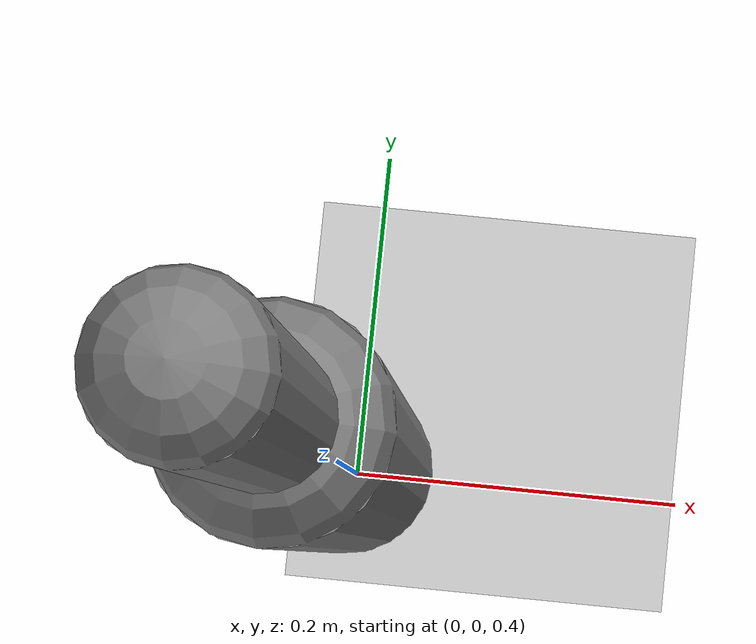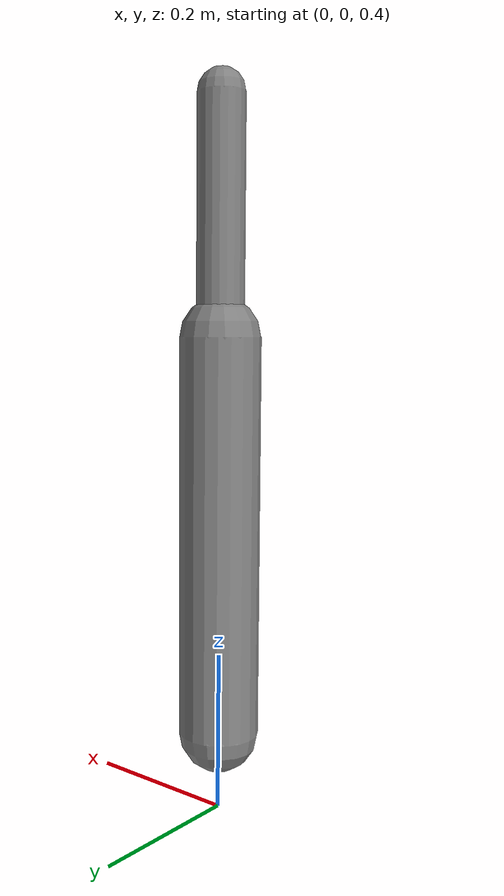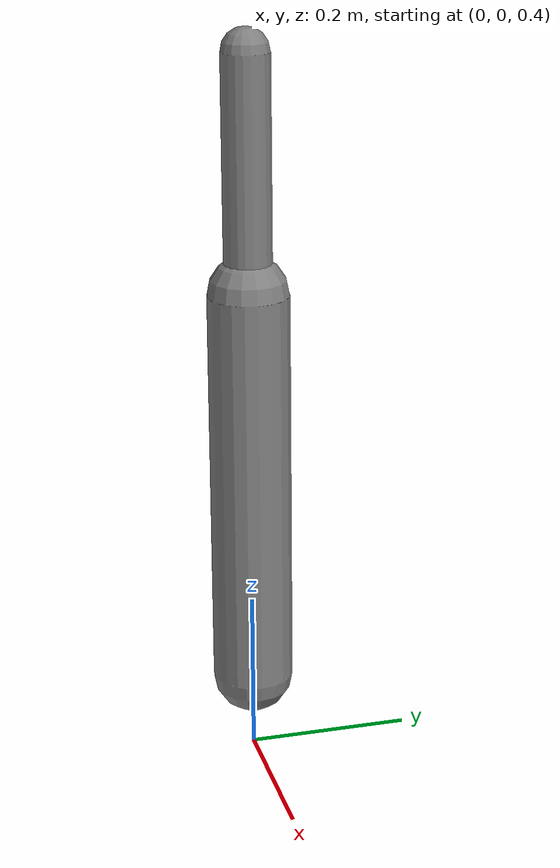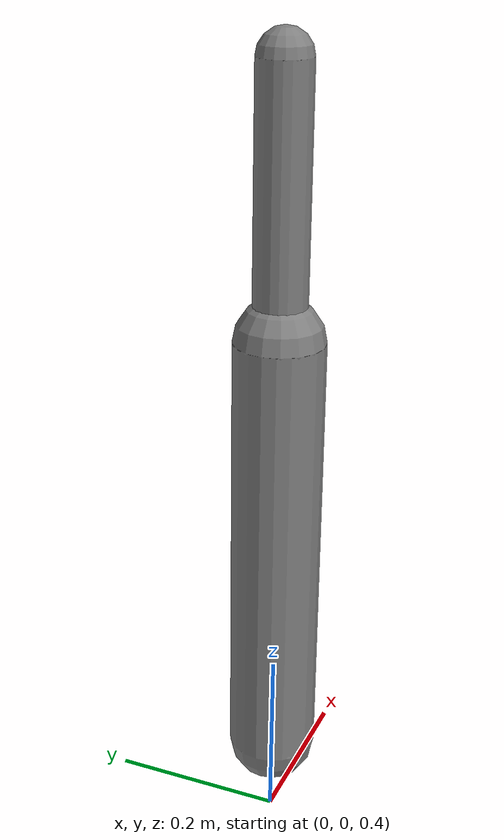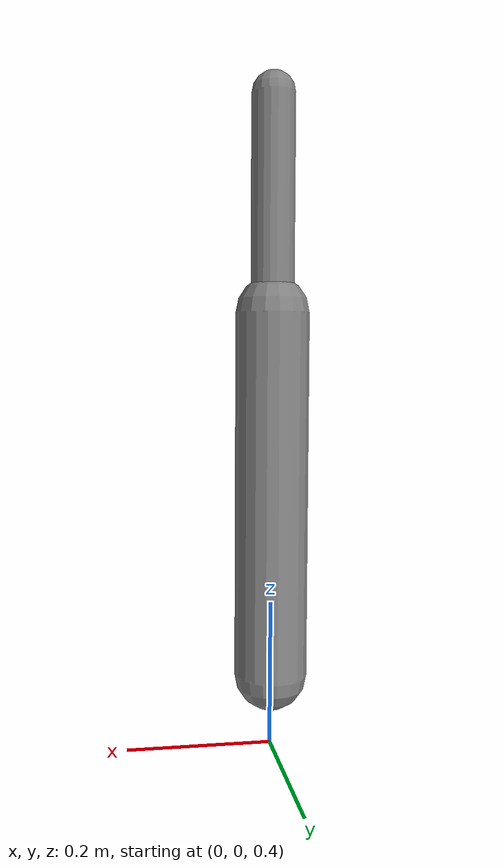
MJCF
<?xml version='1.0' encoding='UTF-8'?>
<mujoco model="RobotModel">
  <option gravity="0 0 -9.81" timestep="0.002" solver="CG" iterations="500" integrator="Euler"/>
  <worldbody>
    <geom name="Floor" type="plane" size="10 10 0.1" pos="0 0 0" rgba="0.8 0.8 0.8 1"/>
    <body name="Limb0" pos="0 0 0.5">
      <geom type="capsule" fromto="0 0 0 0 0 0.5" size="0.05" density="1000" contype="0" conaffinity="0"/>
      <body name="Limb0_35b39362" pos="0 0 0.5">
        <geom type="capsule" fromto="0 0 0 0 0 0.28861595298369697" size="0.029434933940509403" density="800" contype="0" conaffinity="0"/>
        <joint name="Joint_Limb0_Limb0_35b39362_0" type="hinge" axis="1 0 0" range="-60 60"/>
      </body>
    </body>
  </worldbody>
  <actuator>
    <position name="position_Actuator_Joint_Limb0_Limb0_35b39362_0" joint="Joint_Limb0_Limb0_35b39362_0" gear="1.0"/>
  </actuator>
</mujoco>
